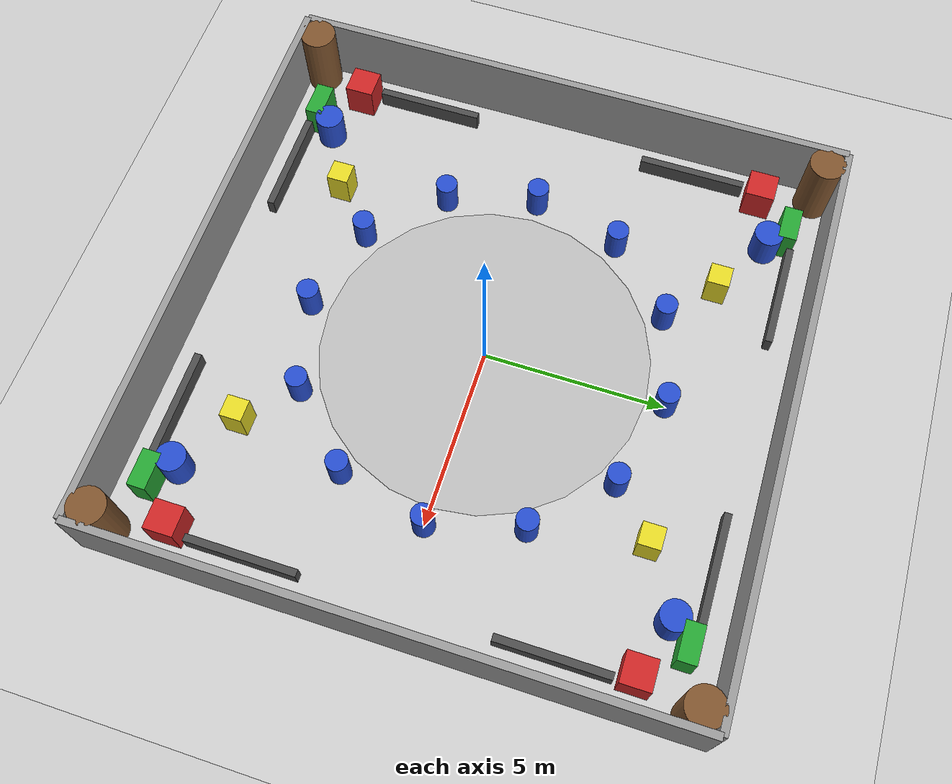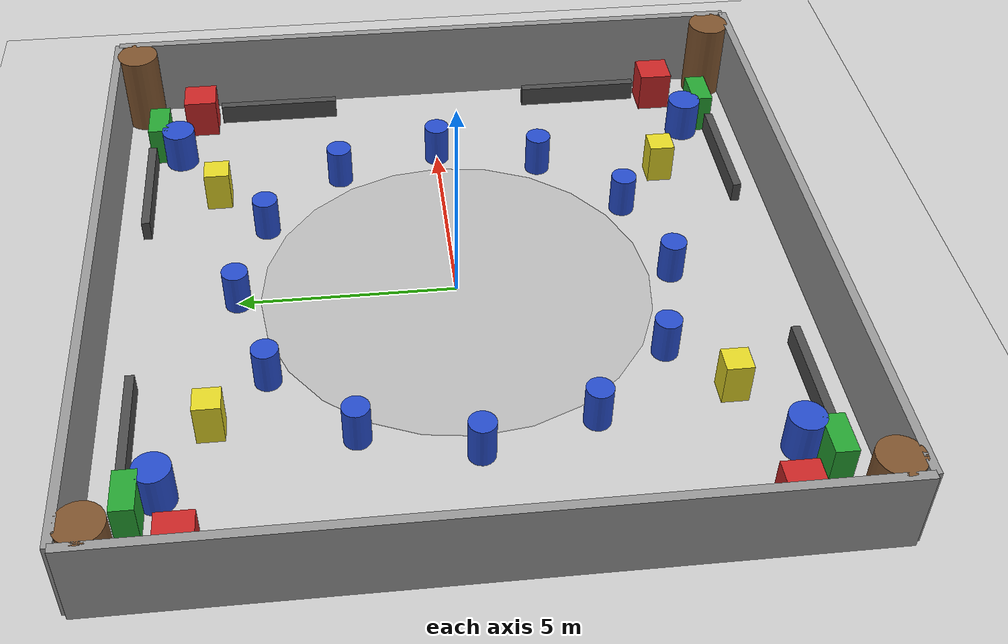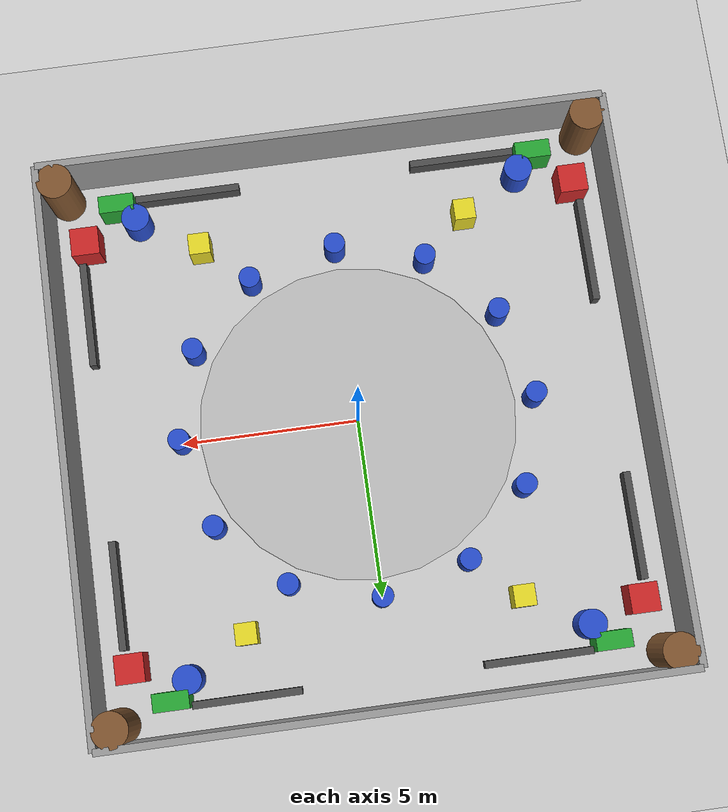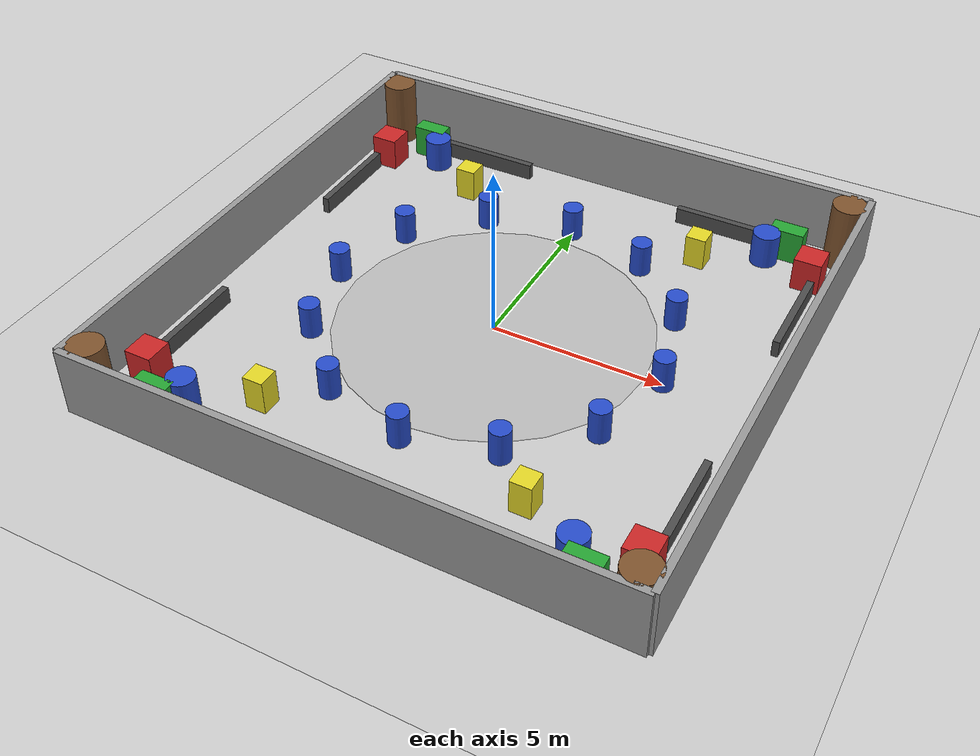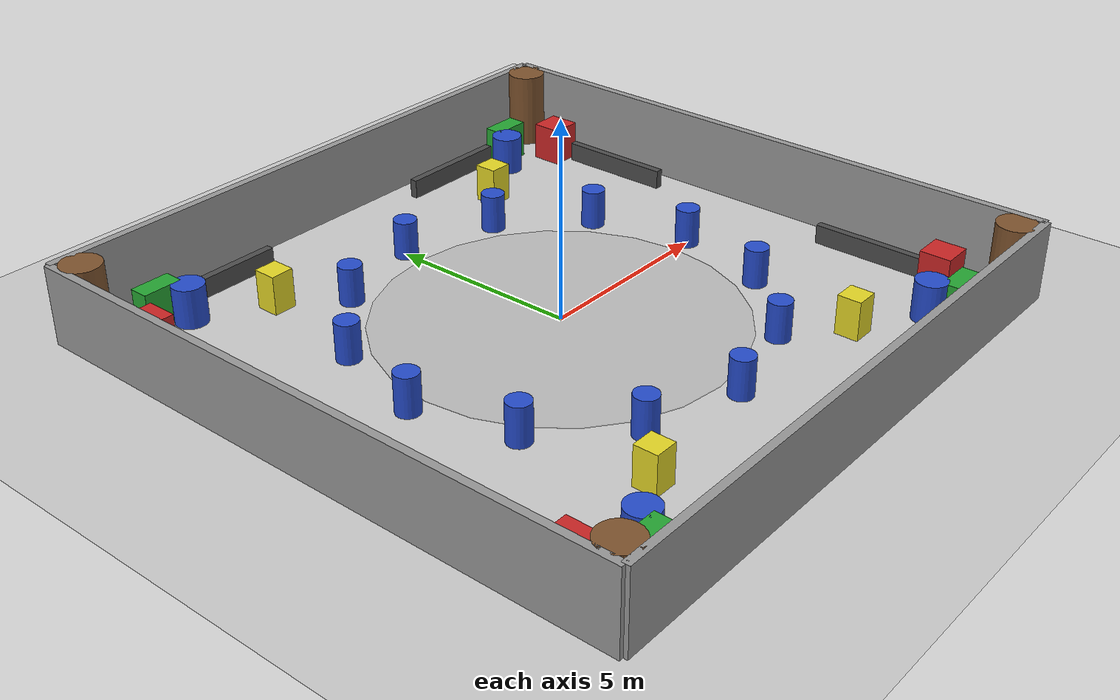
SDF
<?xml version="1.0" ?>
<sdf version="1.6">
  <world name="default">

    <!-- Ground plane and lighting / scene / gui / physics as in original -->
    <model name="ground_plane">
      <static>1</static>
      <link name="link">
        <collision name="collision">
          <geometry><plane><normal>0 0 1</normal><size>100 100</size></plane></geometry>
          <surface>
            <friction><ode><mu>100</mu><mu2>50</mu2></ode><torsional><ode/></torsional></friction>
            <contact><ode/></contact>
            <bounce/>
          </surface>
          <max_contacts>10</max_contacts>
        </collision>
        <visual name="visual">
          <cast_shadows>0</cast_shadows>
          <geometry><plane><normal>0 0 1</normal><size>100 100</size></plane></geometry>
          <material><script><uri>file://media/materials/scripts/gazebo.material</uri><name>Gazebo/Grey</name></script></material>
        </visual>
        <self_collide>0</self_collide><enable_wind>0</enable_wind><kinematic>0</kinematic>
      </link>
    </model>

    <light name="sun" type="directional">
      <cast_shadows>1</cast_shadows>
      <pose>0 0 10 0 -0 0</pose>
      <diffuse>0.8 0.8 0.8 1</diffuse>
      <specular>0.2 0.2 0.2 1</specular>
      <attenuation><range>1000</range><constant>0.9</constant><linear>0.01</linear><quadratic>0.001</quadratic></attenuation>
      <direction>-0.5 0.1 -0.9</direction>
      <spot><inner_angle>0</inner_angle><outer_angle>0</outer_angle><falloff>0</falloff></spot>
    </light>

    <light name="user_point_light_0" type="point">
      <pose>0 0 3 0 -0 0</pose>
      <diffuse>0.5 0.5 0.5 1</diffuse><specular>0.1 0.1 0.1 1</specular>
      <attenuation><range>20</range><constant>0.5</constant><linear>0.01</linear><quadratic>0.001</quadratic></attenuation>
      <cast_shadows>0</cast_shadows><direction>0 0 -1</direction>
    </light>

    <scene>
      <shadows>0</shadows>
      <ambient>0.4 0.4 0.4 1</ambient>
      <background>0.7 0.7 0.7 1</background>
    </scene>

    <gui fullscreen="0">
      <camera name="user_camera">
        <pose>0 0 40 0 1.5707 0</pose>
        <view_controller>orbit</view_controller>
        <projection_type>perspective</projection_type>
      </camera>
    </gui>

    <physics type="ode">
      <real_time_update_rate>1000</real_time_update_rate>
      <max_step_size>0.001</max_step_size>
      <real_time_factor>1</real_time_factor>
      <ode>
        <solver><type>quick</type><iters>150</iters><precon_iters>0</precon_iters><sor>1.4</sor><use_dynamic_moi_rescaling>1</use_dynamic_moi_rescaling></solver>
        <constraints><cfm>1e-05</cfm><erp>0.2</erp><contact_max_correcting_vel>2000</contact_max_correcting_vel><contact_surface_layer>0.01</contact_surface_layer></constraints>
      </ode>
    </physics>

    <gravity>0 0 -9.8</gravity>
    <magnetic_field>6e-06 2.3e-05 -4.2e-05</magnetic_field>
    <atmosphere type="adiabatic"/>
    <audio><device>default</device></audio>
    <wind/>
    <spherical_coordinates>
      <surface_model>EARTH_WGS84</surface_model>
      <latitude_deg>0</latitude_deg><longitude_deg>0</longitude_deg>
      <elevation>0</elevation><heading_deg>0</heading_deg>
    </spherical_coordinates>

    <!-- Room walls (16 x 16 m) -->
    <model name="wall_north">
      <static>1</static>
      <pose>0 8 1 0 0 0</pose>
      <link name="link">
        <collision name="collision"><geometry><box><size>16 0.2 2</size></box></geometry><max_contacts>10</max_contacts></collision>
        <visual name="visual"><geometry><box><size>16 0.2 2</size></box></geometry>
          <material><script><name>Gazebo/Grey</name><uri>file://media/materials/scripts/gazebo.material</uri></script></material>
        </visual>
      </link>
    </model>

    <model name="wall_south">
      <static>1</static>
      <pose>0 -8 1 0 0 0</pose>
      <link name="link">
        <collision name="collision"><geometry><box><size>16 0.2 2</size></box></geometry><max_contacts>10</max_contacts></collision>
        <visual name="visual"><geometry><box><size>16 0.2 2</size></box></geometry>
          <material><script><name>Gazebo/Grey</name><uri>file://media/materials/scripts/gazebo.material</uri></script></material>
        </visual>
      </link>
    </model>

    <model name="wall_east">
      <static>1</static>
      <pose>8 0 1 0 0 0</pose>
      <link name="link">
        <collision name="collision"><geometry><box><size>0.2 16 2</size></box></geometry><max_contacts>10</max_contacts></collision>
        <visual name="visual"><geometry><box><size>0.2 16 2</size></box></geometry>
          <material><script><name>Gazebo/Grey</name><uri>file://media/materials/scripts/gazebo.material</uri></script></material>
        </visual>
      </link>
    </model>

    <model name="wall_west">
      <static>1</static>
      <pose>-8 0 1 0 0 0</pose>
      <link name="link">
        <collision name="collision"><geometry><box><size>0.2 16 2</size></box></geometry><max_contacts>10</max_contacts></collision>
        <visual name="visual"><geometry><box><size>0.2 16 2</size></box></geometry>
          <material><script><name>Gazebo/Grey</name><uri>file://media/materials/scripts/gazebo.material</uri></script></material>
        </visual>
      </link>
    </model>

    <!-- Central area kept clear: radius 4.5 m around (0,0) -->
    <!-- Obstacles placed outside the central clear zone, arranged in dense patterns but leaving center free -->

    <!-- Ring of columns (cylinders) at radius ~5.0 m, every 30 degrees -->
    <!-- Columns are static, 0.3 m radius, 1.0 m tall -->
    <!-- Names col_ring_0 ... col_ring_11 -->
    <!-- Positions computed roughly on circle radius 5.0 -->
    <model name="col_ring_0"><static>1</static><pose>5 0 0.5 0 0 0</pose>
      <link name="link"><collision name="collision"><geometry><cylinder><radius>0.3</radius><length>1</length></cylinder></geometry><max_contacts>10</max_contacts></collision>
      <visual name="visual"><geometry><cylinder><radius>0.3</radius><length>1</length></cylinder></geometry><material><script><name>Gazebo/Blue</name><uri>file://media/materials/scripts/gazebo.material</uri></script></material></visual></link></model>

    <model name="col_ring_1"><static>1</static><pose>4.3301 2.5 0.5 0 0 0</pose>
      <link name="link"><collision name="collision"><geometry><cylinder><radius>0.3</radius><length>1</length></cylinder></geometry><max_contacts>10</max_contacts></collision>
      <visual name="visual"><geometry><cylinder><radius>0.3</radius><length>1</length></cylinder></geometry><material><script><name>Gazebo/Blue</name><uri>file://media/materials/scripts/gazebo.material</uri></script></material></visual></link></model>

    <model name="col_ring_2"><static>1</static><pose>2.5 4.3301 0.5 0 0 0</pose>
      <link name="link"><collision name="collision"><geometry><cylinder><radius>0.3</radius><length>1</length></cylinder></geometry><max_contacts>10</max_contacts></collision>
      <visual name="visual"><geometry><cylinder><radius>0.3</radius><length>1</length></cylinder></geometry><material><script><name>Gazebo/Blue</name><uri>file://media/materials/scripts/gazebo.material</uri></script></material></visual></link></model>

    <model name="col_ring_3"><static>1</static><pose>0 5 0.5 0 0 0</pose>
      <link name="link"><collision name="collision"><geometry><cylinder><radius>0.3</radius><length>1</length></cylinder></geometry><max_contacts>10</max_contacts></collision>
      <visual name="visual"><geometry><cylinder><radius>0.3</radius><length>1</length></cylinder></geometry><material><script><name>Gazebo/Blue</name><uri>file://media/materials/scripts/gazebo.material</uri></script></material></visual></link></model>

    <model name="col_ring_4"><static>1</static><pose>-2.5 4.3301 0.5 0 0 0</pose>
      <link name="link"><collision name="collision"><geometry><cylinder><radius>0.3</radius><length>1</length></cylinder></geometry><max_contacts>10</max_contacts></collision>
      <visual name="visual"><geometry><cylinder><radius>0.3</radius><length>1</length></cylinder></geometry><material><script><name>Gazebo/Blue</name><uri>file://media/materials/scripts/gazebo.material</uri></script></material></visual></link></model>

    <model name="col_ring_5"><static>1</static><pose>-4.3301 2.5 0.5 0 0 0</pose>
      <link name="link"><collision name="collision"><geometry><cylinder><radius>0.3</radius><length>1</length></cylinder></geometry><max_contacts>10</max_contacts></collision>
      <visual name="visual"><geometry><cylinder><radius>0.3</radius><length>1</length></cylinder></geometry><material><script><name>Gazebo/Blue</name><uri>file://media/materials/scripts/gazebo.material</uri></script></material></visual></link></model>

    <model name="col_ring_6"><static>1</static><pose>-5 0 0.5 0 0 0</pose>
      <link name="link"><collision name="collision"><geometry><cylinder><radius>0.3</radius><length>1</length></cylinder></geometry><max_contacts>10</max_contacts></collision>
      <visual name="visual"><geometry><cylinder><radius>0.3</radius><length>1</length></cylinder></geometry><material><script><name>Gazebo/Blue</name><uri>file://media/materials/scripts/gazebo.material</uri></script></material></visual></link></model>

    <model name="col_ring_7"><static>1</static><pose>-4.3301 -2.5 0.5 0 0 0</pose>
      <link name="link"><collision name="collision"><geometry><cylinder><radius>0.3</radius><length>1</length></cylinder></geometry><max_contacts>10</max_contacts></collision>
      <visual name="visual"><geometry><cylinder><radius>0.3</radius><length>1</length></cylinder></geometry><material><script><name>Gazebo/Blue</name><uri>file://media/materials/scripts/gazebo.material</uri></script></material></visual></link></model>

    <model name="col_ring_8"><static>1</static><pose>-2.5 -4.3301 0.5 0 0 0</pose>
      <link name="link"><collision name="collision"><geometry><cylinder><radius>0.3</radius><length>1</length></cylinder></geometry><max_contacts>10</max_contacts></collision>
      <visual name="visual"><geometry><cylinder><radius>0.3</radius><length>1</length></cylinder></geometry><material><script><name>Gazebo/Blue</name><uri>file://media/materials/scripts/gazebo.material</uri></script></material></visual></link></model>

    <model name="col_ring_9"><static>1</static><pose>0 -5 0.5 0 0 0</pose>
      <link name="link"><collision name="collision"><geometry><cylinder><radius>0.3</radius><length>1</length></cylinder></geometry><max_contacts>10</max_contacts></collision>
      <visual name="visual"><geometry><cylinder><radius>0.3</radius><length>1</length></cylinder></geometry><material><script><name>Gazebo/Blue</name><uri>file://media/materials/scripts/gazebo.material</uri></script></material></visual></link></model>

    <model name="col_ring_10"><static>1</static><pose>2.5 -4.3301 0.5 0 0 0</pose>
      <link name="link"><collision name="collision"><geometry><cylinder><radius>0.3</radius><length>1</length></cylinder></geometry><max_contacts>10</max_contacts></collision>
      <visual name="visual"><geometry><cylinder><radius>0.3</radius><length>1</length></cylinder></geometry><material><script><name>Gazebo/Blue</name><uri>file://media/materials/scripts/gazebo.material</uri></script></material></visual></link></model>

    <model name="col_ring_11"><static>1</static><pose>4.3301 -2.5 0.5 0 0 0</pose>
      <link name="link"><collision name="collision"><geometry><cylinder><radius>0.3</radius><length>1</length></cylinder></geometry><max_contacts>10</max_contacts></collision>
      <visual name="visual"><geometry><cylinder><radius>0.3</radius><length>1</length></cylinder></geometry><material><script><name>Gazebo/Blue</name><uri>file://media/materials/scripts/gazebo.material</uri></script></material></visual></link></model>

    <!-- Additional dense obstacle clusters near corners and edges but outside center -->
    <!-- Cluster NE: mix of boxes and cylinders -->
    <model name="cluster_ne_box_1"><static>1</static><pose>7 6 0.5 0 0 0</pose>
      <link name="link"><collision name="collision"><geometry><box><size>0.8 0.8 1</size></box></geometry><max_contacts>10</max_contacts></collision>
      <visual name="visual"><geometry><box><size>0.8 0.8 1</size></box></geometry><material><script><name>Gazebo/Red</name><uri>file://media/materials/scripts/gazebo.material</uri></script></material></visual></link></model>

    <model name="cluster_ne_box_2"><static>1</static><pose>6 7 0.5 0 0 0</pose>
      <link name="link"><collision name="collision"><geometry><box><size>1 0.5 1</size></box></geometry><max_contacts>10</max_contacts></collision>
      <visual name="visual"><geometry><box><size>1 0.5 1</size></box></geometry><material><script><name>Gazebo/Green</name><uri>file://media/materials/scripts/gazebo.material</uri></script></material></visual></link></model>

    <model name="cluster_ne_cyl_1"><static>1</static><pose>5.5 6.5 0.5 0 0 0</pose>
      <link name="link"><collision name="collision"><geometry><cylinder><radius>0.4</radius><length>1</length></cylinder></geometry><max_contacts>10</max_contacts></collision>
      <visual name="visual"><geometry><cylinder><radius>0.4</radius><length>1</length></cylinder></geometry><material><script><name>Gazebo/Blue</name><uri>file://media/materials/scripts/gazebo.material</uri></script></material></visual></link></model>

    <!-- Cluster NW -->
    <model name="cluster_nw_box_1"><static>1</static><pose>-7 6 0.5 0 0 0</pose>
      <link name="link"><collision name="collision"><geometry><box><size>0.8 0.8 1</size></box></geometry><max_contacts>10</max_contacts></collision>
      <visual name="visual"><geometry><box><size>0.8 0.8 1</size></box></geometry><material><script><name>Gazebo/Red</name><uri>file://media/materials/scripts/gazebo.material</uri></script></material></visual></link></model>

    <model name="cluster_nw_box_2"><static>1</static><pose>-6 7 0.5 0 0 0</pose>
      <link name="link"><collision name="collision"><geometry><box><size>1 0.5 1</size></box></geometry><max_contacts>10</max_contacts></collision>
      <visual name="visual"><geometry><box><size>1 0.5 1</size></box></geometry><material><script><name>Gazebo/Green</name><uri>file://media/materials/scripts/gazebo.material</uri></script></material></visual></link></model>

    <model name="cluster_nw_cyl_1"><static>1</static><pose>-5.5 6.5 0.5 0 0 0</pose>
      <link name="link"><collision name="collision"><geometry><cylinder><radius>0.4</radius><length>1</length></cylinder></geometry><max_contacts>10</max_contacts></collision>
      <visual name="visual"><geometry><cylinder><radius>0.4</radius><length>1</length></cylinder></geometry><material><script><name>Gazebo/Blue</name><uri>file://media/materials/scripts/gazebo.material</uri></script></material></visual></link></model>

    <!-- Cluster SE -->
    <model name="cluster_se_box_1"><static>1</static><pose>7 -6 0.5 0 0 0</pose>
      <link name="link"><collision name="collision"><geometry><box><size>0.8 0.8 1</size></box></geometry><max_contacts>10</max_contacts></collision>
      <visual name="visual"><geometry><box><size>0.8 0.8 1</size></box></geometry><material><script><name>Gazebo/Red</name><uri>file://media/materials/scripts/gazebo.material</uri></script></material></visual></link></model>

    <model name="cluster_se_box_2"><static>1</static><pose>6 -7 0.5 0 0 0</pose>
      <link name="link"><collision name="collision"><geometry><box><size>1 0.5 1</size></box></geometry><max_contacts>10</max_contacts></collision>
      <visual name="visual"><geometry><box><size>1 0.5 1</size></box></geometry><material><script><name>Gazebo/Green</name><uri>file://media/materials/scripts/gazebo.material</uri></script></material></visual></link></model>

    <model name="cluster_se_cyl_1"><static>1</static><pose>5.5 -6.5 0.5 0 0 0</pose>
      <link name="link"><collision name="collision"><geometry><cylinder><radius>0.4</radius><length>1</length></cylinder></geometry><max_contacts>10</max_contacts></collision>
      <visual name="visual"><geometry><cylinder><radius>0.4</radius><length>1</length></cylinder></geometry><material><script><name>Gazebo/Blue</name><uri>file://media/materials/scripts/gazebo.material</uri></script></material></visual></link></model>

    <!-- Cluster SW -->
    <model name="cluster_sw_box_1"><static>1</static><pose>-7 -6 0.5 0 0 0</pose>
      <link name="link"><collision name="collision"><geometry><box><size>0.8 0.8 1</size></box></geometry><max_contacts>10</max_contacts></collision>
      <visual name="visual"><geometry><box><size>0.8 0.8 1</size></box></geometry><material><script><name>Gazebo/Red</name><uri>file://media/materials/scripts/gazebo.material</uri></script></material></visual></link></model>

    <model name="cluster_sw_box_2"><static>1</static><pose>-6 -7 0.5 0 0 0</pose>
      <link name="link"><collision name="collision"><geometry><box><size>1 0.5 1</size></box></geometry><max_contacts>10</max_contacts></collision>
      <visual name="visual"><geometry><box><size>1 0.5 1</size></box></geometry><material><script><name>Gazebo/Green</name><uri>file://media/materials/scripts/gazebo.material</uri></script></material></visual></link></model>

    <model name="cluster_sw_cyl_1"><static>1</static><pose>-5.5 -6.5 0.5 0 0 0</pose>
      <link name="link"><collision name="collision"><geometry><cylinder><radius>0.4</radius><length>1</length></cylinder></geometry><max_contacts>10</max_contacts></collision>
      <visual name="visual"><geometry><cylinder><radius>0.4</radius><length>1</length></cylinder></geometry><material><script><name>Gazebo/Blue</name><uri>file://media/materials/scripts/gazebo.material</uri></script></material></visual></link></model>

    <!-- Edge obstacles: long low boxes parallel to walls to create corridors -->
    <model name="edge_north_strip_1"><static>1</static><pose>-4 7.2 0.25 0 0 0</pose>
      <link name="link"><collision name="collision"><geometry><box><size>3 0.2 0.5</size></box></geometry><max_contacts>10</max_contacts></collision>
      <visual name="visual"><geometry><box><size>3 0.2 0.5</size></box></geometry><material><script><name>Gazebo/DarkGrey</name><uri>file://media/materials/scripts/gazebo.material</uri></script></material></visual></link></model>

    <model name="edge_north_strip_2"><static>1</static><pose>4 7.2 0.25 0 0 0</pose>
      <link name="link"><collision name="collision"><geometry><box><size>3 0.2 0.5</size></box></geometry><max_contacts>10</max_contacts></collision>
      <visual name="visual"><geometry><box><size>3 0.2 0.5</size></box></geometry><material><script><name>Gazebo/DarkGrey</name><uri>file://media/materials/scripts/gazebo.material</uri></script></material></visual></link></model>

    <model name="edge_south_strip_1"><static>1</static><pose>-4 -7.2 0.25 0 0 0</pose>
      <link name="link"><collision name="collision"><geometry><box><size>3 0.2 0.5</size></box></geometry><max_contacts>10</max_contacts></collision>
      <visual name="visual"><geometry><box><size>3 0.2 0.5</size></box></geometry><material><script><name>Gazebo/DarkGrey</name><uri>file://media/materials/scripts/gazebo.material</uri></script></material></visual></link></model>

    <model name="edge_south_strip_2"><static>1</static><pose>4 -7.2 0.25 0 0 0</pose>
      <link name="link"><collision name="collision"><geometry><box><size>3 0.2 0.5</size></box></geometry><max_contacts>10</max_contacts></collision>
      <visual name="visual"><geometry><box><size>3 0.2 0.5</size></box></geometry><material><script><name>Gazebo/DarkGrey</name><uri>file://media/materials/scripts/gazebo.material</uri></script></material></visual></link></model>

    <model name="edge_east_strip_1"><static>1</static><pose>7.2 4 0.25 0 0 0</pose>
      <link name="link"><collision name="collision"><geometry><box><size>0.2 3 0.5</size></box></geometry><max_contacts>10</max_contacts></collision>
      <visual name="visual"><geometry><box><size>0.2 3 0.5</size></box></geometry><material><script><name>Gazebo/DarkGrey</name><uri>file://media/materials/scripts/gazebo.material</uri></script></material></visual></link></model>

    <model name="edge_east_strip_2"><static>1</static><pose>7.2 -4 0.25 0 0 0</pose>
      <link name="link"><collision name="collision"><geometry><box><size>0.2 3 0.5</size></box></geometry><max_contacts>10</max_contacts></collision>
      <visual name="visual"><geometry><box><size>0.2 3 0.5</size></box></geometry><material><script><name>Gazebo/DarkGrey</name><uri>file://media/materials/scripts/gazebo.material</uri></script></material></visual></link></model>

    <model name="edge_west_strip_1"><static>1</static><pose>-7.2 4 0.25 0 0 0</pose>
      <link name="link"><collision name="collision"><geometry><box><size>0.2 3 0.5</size></box></geometry><max_contacts>10</max_contacts></collision>
      <visual name="visual"><geometry><box><size>0.2 3 0.5</size></box></geometry><material><script><name>Gazebo/DarkGrey</name><uri>file://media/materials/scripts/gazebo.material</uri></script></material></visual></link></model>

    <model name="edge_west_strip_2"><static>1</static><pose>-7.2 -4 0.25 0 0 0</pose>
      <link name="link"><collision name="collision"><geometry><box><size>0.2 3 0.5</size></box></geometry><max_contacts>10</max_contacts></collision>
      <visual name="visual"><geometry><box><size>0.2 3 0.5</size></box></geometry><material><script><name>Gazebo/DarkGrey</name><uri>file://media/materials/scripts/gazebo.material</uri></script></material></visual></link></model>

    <!-- Additional random obstacles around periphery to increase density -->
    <model name="rand_box_1"><static>1</static><pose>3.8 5.5 0.5 0 0 0</pose>
      <link name="link"><collision name="collision"><geometry><box><size>0.6 0.6 1</size></box></geometry><max_contacts>10</max_contacts></collision>
      <visual name="visual"><geometry><box><size>0.6 0.6 1</size></box></geometry><material><script><name>Gazebo/Yellow</name><uri>file://media/materials/scripts/gazebo.material</uri></script></material></visual></link></model>

    <model name="rand_box_2"><static>1</static><pose>-3.8 5.5 0.5 0 0 0</pose>
      <link name="link"><collision name="collision"><geometry><box><size>0.6 0.6 1</size></box></geometry><max_contacts>10</max_contacts></collision>
      <visual name="visual"><geometry><box><size>0.6 0.6 1</size></box></geometry><material><script><name>Gazebo/Yellow</name><uri>file://media/materials/scripts/gazebo.material</uri></script></material></visual></link></model>

    <model name="rand_box_3"><static>1</static><pose>3.8 -5.5 0.5 0 0 0</pose>
      <link name="link"><collision name="collision"><geometry><box><size>0.6 0.6 1</size></box></geometry><max_contacts>10</max_contacts></collision>
      <visual name="visual"><geometry><box><size>0.6 0.6 1</size></box></geometry><material><script><name>Gazebo/Yellow</name><uri>file://media/materials/scripts/gazebo.material</uri></script></material></visual></link></model>

    <model name="rand_box_4"><static>1</static><pose>-3.8 -5.5 0.5 0 0 0</pose>
      <link name="link"><collision name="collision"><geometry><box><size>0.6 0.6 1</size></box></geometry><max_contacts>10</max_contacts></collision>
      <visual name="visual"><geometry><box><size>0.6 0.6 1</size></box></geometry><material><script><name>Gazebo/Yellow</name><uri>file://media/materials/scripts/gazebo.material</uri></script></material></visual></link></model>

    <!-- Tall pillar obstacles near corners to vary heights -->
    <model name="tall_pillar_ne"><static>1</static><pose>7.5 7.5 1 0 0 0</pose>
      <link name="link"><collision name="collision"><geometry><cylinder><radius>0.5</radius><length>2</length></cylinder></geometry><max_contacts>10</max_contacts></collision>
      <visual name="visual"><geometry><cylinder><radius>0.5</radius><length>2</length></cylinder></geometry><material><script><name>Gazebo/Brown</name><uri>file://media/materials/scripts/gazebo.material</uri></script></material></visual></link></model>

    <model name="tall_pillar_nw"><static>1</static><pose>-7.5 7.5 1 0 0 0</pose>
      <link name="link"><collision name="collision"><geometry><cylinder><radius>0.5</radius><length>2</length></cylinder></geometry><max_contacts>10</max_contacts></collision>
      <visual name="visual"><geometry><cylinder><radius>0.5</radius><length>2</length></cylinder></geometry><material><script><name>Gazebo/Brown</name><uri>file://media/materials/scripts/gazebo.material</uri></script></material></visual></link></model>

    <model name="tall_pillar_se"><static>1</static><pose>7.5 -7.5 1 0 0 0</pose>
      <link name="link"><collision name="collision"><geometry><cylinder><radius>0.5</radius><length>2</length></cylinder></geometry><max_contacts>10</max_contacts></collision>
      <visual name="visual"><geometry><cylinder><radius>0.5</radius><length>2</length></cylinder></geometry><material><script><name>Gazebo/Brown</name><uri>file://media/materials/scripts/gazebo.material</uri></script></material></visual></link></model>

    <model name="tall_pillar_sw"><static>1</static><pose>-7.5 -7.5 1 0 0 0</pose>
      <link name="link"><collision name="collision"><geometry><cylinder><radius>0.5</radius><length>2</length></cylinder></geometry><max_contacts>10</max_contacts></collision>
      <visual name="visual"><geometry><cylinder><radius>0.5</radius><length>2</length></cylinder></geometry><material><script><name>Gazebo/Brown</name><uri>file://media/materials/scripts/gazebo.material</uri></script></material></visual></link></model>

    <!-- Ensure robot spawn area remains clear: add a visual marker (optional) but no collisions inside radius 4.5 -->
    <model name="spawn_marker" >
      <static>1</static>
      <pose>0 0 0.01 0 0 0</pose>
      <link name="link">
        <visual name="visual">
          <geometry><cylinder><radius>4.5</radius><length>0.02</length></cylinder></geometry>
          <material><script><name>Gazebo/Transparent</name><uri>file://media/materials/scripts/gazebo.material</uri></script></material>
          <cast_shadows>0</cast_shadows>
        </visual>
      </link>
    </model>

    <!-- End of world -->
  </world>
</sdf>
